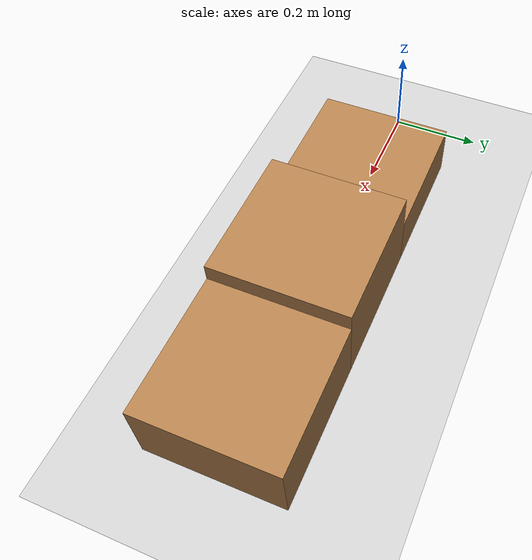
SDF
<?xml version="1.0" ?>
<sdf version="1.4">
    <world name="default">
        <physics type="ode">
            <gravity>0 0 -9.81</gravity>
            <ode>
                <solver>
                    <type>quick</type>
                    <iters>50</iters>
                    <sor>1.4</sor>
                </solver>
                <constraints>
                    <cfm>0.0</cfm>
                    <erp>0.2</erp>
                    <contact_max_correcting_vel>100.0</contact_max_correcting_vel>
                    <contact_surface_layer>0.0</contact_surface_layer>
                </constraints>
            </ode>
            <real_time_update_rate>1000</real_time_update_rate>
            <max_step_size>0.001</max_step_size>
        </physics>
        <!-- A global light source -->
        <include>
            <uri>model://sun</uri>
        </include>
        <!-- A ground plane -->
        <include>
            <uri>model://ground_plane</uri>
        </include>
        <model name="step_1">
            <pose>0.26 0.000000 0.0600 0.000000 0.000000 0.000000</pose>
            <static>true</static>
            <link name="step_1_body">
                <inertial>
                    <mass>1.0</mass>
                    <inertia>
                        <ixx>1.0</ixx>
                        <ixy>0.0</ixy>
                        <ixz>0.0</ixz>
                        <iyy>1.0</iyy>
                        <iyz>0.0</iyz>
                        <izz>1.0</izz>
                    </inertia>
                </inertial>
                <collision name="collision">
                    <geometry>
                        <box>
                            <size>0.3 0.3 0.12</size>
                        </box>
                    </geometry>
                    <surface>
                        <friction>
                            <ode>
                                <mu>100</mu>
                                <mu2>100</mu2>
                            </ode>
                        </friction>
                    </surface>
                </collision>
                <visual name="visual">
                    <geometry>
                        <box>
                            <size>0.3 0.3 0.12</size>
                        </box>
                    </geometry>
                    <material>
                        <script>
                            <uri>file://media/materials/scripts/gazebo.material</uri>
                            <name>Gazebo/Wood</name>
                        </script>
                    </material>
                </visual>
            </link>
        </model>
        <model name="step_2">
            <pose>0.56 0.000000 0.100 0.000000 0.000000 0.000000</pose>
            <static>true</static>
            <link name="step_2_body">
                <inertial>
                    <mass>1.0</mass>
                    <inertia>
                        <ixx>1.0</ixx>
                        <ixy>0.0</ixy>
                        <ixz>0.0</ixz>
                        <iyy>1.0</iyy>
                        <iyz>0.0</iyz>
                        <izz>1.0</izz>
                    </inertia>
                </inertial>
                <collision name="collision">
                    <geometry>
                        <box>
                            <size>0.31 0.3 0.20</size>
                        </box>
                    </geometry>
                    <surface>
                        <friction>
                            <ode>
                                <mu>100</mu>
                                <mu2>100</mu2>
                            </ode>
                        </friction>
                    </surface>
                </collision>
                <visual name="visual">
                    <geometry>
                        <box>
                            <size>0.3 0.3 0.20</size>
                        </box>
                    </geometry>
                    <material>
                        <script>
                            <uri>file://media/materials/scripts/gazebo.material</uri>
                            <name>Gazebo/Wood</name>
                        </script>
                    </material>
                </visual>
            </link>
        </model>
        <model name="step_3">
            <pose>0.86 0.000000 0.0800 0.000000 0.000000 0.000000</pose>
            <static>true</static>
            <link name="step_3_body">
                <inertial>
                    <mass>1.0</mass>
                    <inertia>
                        <ixx>1.0</ixx>
                        <ixy>0.0</ixy>
                        <ixz>0.0</ixz>
                        <iyy>1.0</iyy>
                        <iyz>0.0</iyz>
                        <izz>1.0</izz>
                    </inertia>
                </inertial>
                <collision name="collision">
                    <geometry>
                        <box>
                            <size>0.3 0.3 0.16</size>
                        </box>
                    </geometry>
                    <surface>
                        <friction>
                            <ode>
                                <mu>100</mu>
                                <mu2>100</mu2>
                            </ode>
                        </friction>
                    </surface>
                </collision>
                <visual name="visual">
                    <geometry>
                        <box>
                            <size>0.3 0.3 0.16</size>
                        </box>
                    </geometry>
                    <material>
                        <script>
                            <uri>file://media/materials/scripts/gazebo.material</uri>
                            <name>Gazebo/Wood</name>
                        </script>
                    </material>
                </visual>
            </link>
        </model>
    </world>
</sdf>
